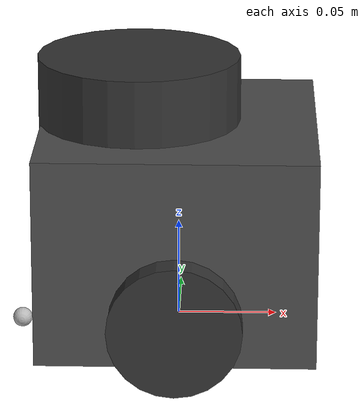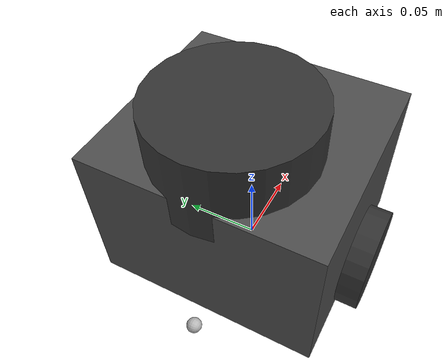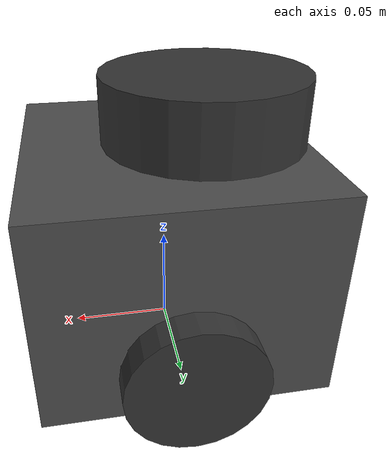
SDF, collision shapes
<?xml version="1.0"?>
<sdf version="1.6">
  <model name="turtlebot3_burger_low_lidar">
    <pose>0 0 0 0 0 0</pose>

    <link name="base_footprint"/>

    <link name="base_link">
      <inertial>
        <pose>0 0 0.042 0 0 0</pose>
        <mass>0.82573504</mass>
        <inertia>
          <ixx>0.002257</ixx>
          <ixy>0</ixy>
          <ixz>0</ixz>
          <iyy>0.002045</iyy>
          <iyz>0</iyz>
          <izz>0.002814</izz>
        </inertia>
      </inertial>
      <collision name="base_collision">
        <pose>0 0 0.052 0 0 0</pose>
        <geometry><box><size>0.138 0.149 0.104</size></box></geometry>
      </collision>
      <visual name="base_visual">
        <pose>0 0 0 0 0 0</pose>
        <geometry>
          <mesh>
            <uri>model://turtlebot3_burger_low_lidar/meshes/burger_base_without_top.stl</uri>
            <scale>0.001 0.001 0.001</scale>
          </mesh>
        </geometry>
        <material>
          <ambient>0.3 0.3 0.3 1</ambient>
          <diffuse>0.3 0.3 0.3 1</diffuse>
        </material>
      </visual>
      <sensor name="base_contact_sensor" type="contact">
        <always_on>true</always_on>
        <update_rate>100</update_rate>
        <contact><collision>base_collision</collision></contact>
        <plugin name="base_contact_ros" filename="libgazebo_ros_bumper.so">
          <ros>
            <namespace>/gazebo/contacts</namespace>
            <remapping>bumper_states:=base</remapping>
          </ros>
          <frame_name>world</frame_name>
        </plugin>
      </sensor>
    </link>

    <link name="imu_link">
      <sensor name="tb3_imu" type="imu">
        <always_on>true</always_on>
        <update_rate>200</update_rate>
        <imu>
          <angular_velocity>
            <x><noise type="gaussian"><mean>0</mean><stddev>2e-4</stddev></noise></x>
            <y><noise type="gaussian"><mean>0</mean><stddev>2e-4</stddev></noise></y>
            <z><noise type="gaussian"><mean>0</mean><stddev>2e-4</stddev></noise></z>
          </angular_velocity>
          <linear_acceleration>
            <x><noise type="gaussian"><mean>0</mean><stddev>1.7e-2</stddev></noise></x>
            <y><noise type="gaussian"><mean>0</mean><stddev>1.7e-2</stddev></noise></y>
            <z><noise type="gaussian"><mean>0</mean><stddev>1.7e-2</stddev></noise></z>
          </linear_acceleration>
        </imu>
        <plugin name="turtlebot3_imu" filename="libgazebo_ros_imu_sensor.so">
          <ros><remapping>~/out:=imu</remapping></ros>
        </plugin>
      </sensor>
    </link>

    <link name="base_scan">
      <inertial>
        <pose>-0.020 0 0.110 0 0 0</pose>
        <mass>0.114</mass>
        <inertia>
          <ixx>0.001</ixx><ixy>0</ixy><ixz>0</ixz>
          <iyy>0.001</iyy><iyz>0</iyz><izz>0.001</izz>
        </inertia>
      </inertial>
      <collision name="lidar_sensor_collision">
        <pose>-0.020 0 0.110 0 0 0</pose>
        <geometry><cylinder><radius>0.0508</radius><length>0.055</length></cylinder></geometry>
      </collision>
      <visual name="lidar_sensor_visual">
        <pose>-0.032 0 0.120 0 0 0</pose>
        <geometry>
          <mesh>
            <uri>model://turtlebot3_common/meshes/sensors/lds.stl</uri>
            <scale>0.001 0.001 0.001</scale>
          </mesh>
        </geometry>
        <material>
          <ambient>0.2 0.2 0.2 1</ambient>
          <diffuse>0.2 0.2 0.2 1</diffuse>
        </material>
      </visual>
      <sensor name="hls_lfcd_lds" type="ray">
        <always_on>true</always_on>
        <visualize>false</visualize>
        <pose>-0.032 0 0.120 0 0 0</pose>
        <update_rate>5</update_rate>
        <ray>
          <scan>
            <horizontal>
              <samples>360</samples><resolution>1</resolution>
              <min_angle>0</min_angle><max_angle>6.28</max_angle>
            </horizontal>
          </scan>
          <range><min>0.12</min><max>3.5</max><resolution>0.015</resolution></range>
          <noise><type>gaussian</type><mean>0</mean><stddev>0.01</stddev></noise>
        </ray>
        <plugin name="turtlebot3_laserscan" filename="libgazebo_ros_ray_sensor.so">
          <ros><remapping>~/out:=scan</remapping></ros>
          <output_type>sensor_msgs/LaserScan</output_type>
          <frame_name>base_scan</frame_name>
        </plugin>
      </sensor>
      <sensor name="lidar_contact_sensor" type="contact">
        <always_on>true</always_on>
        <update_rate>100</update_rate>
        <contact><collision>lidar_sensor_collision</collision></contact>
        <plugin name="lidar_contact_ros" filename="libgazebo_ros_bumper.so">
          <ros>
            <namespace>/gazebo/contacts</namespace>
            <remapping>bumper_states:=lidar</remapping>
          </ros>
          <frame_name>world</frame_name>
        </plugin>
      </sensor>
    </link>

    <link name="wheel_left_link">
      <inertial>
        <pose>0 0.08 0.023 -1.57 0 0</pose>
        <mass>0.02849894</mass>
        <inertia>
          <ixx>0.0018158194</ixx><ixy>-9.3392e-12</ixy><ixz>1.04909e-11</ixz>
          <iyy>0.0032922126</iyy><iyz>5.75694e-11</iyz><izz>0.0018158194</izz>
        </inertia>
      </inertial>
      <collision name="wheel_left_collision">
        <pose>0 0.08 0.023 -1.57 0 0</pose>
        <geometry><cylinder><radius>0.033</radius><length>0.018</length></cylinder></geometry>
        <surface>
          <friction><ode><mu>100000</mu><mu2>100000</mu2><slip1>0</slip1><slip2>0</slip2></ode></friction>
          <contact><ode><kp>1e5</kp><kd>1</kd><max_vel>0.01</max_vel><min_depth>0.001</min_depth></ode></contact>
        </surface>
      </collision>
      <visual name="wheel_left_visual">
        <pose>0 0.08 0.023 0 0 0</pose>
        <geometry>
          <mesh>
            <uri>model://turtlebot3_common/meshes/wheels/left_tire.stl</uri>
            <scale>0.001 0.001 0.001</scale>
          </mesh>
        </geometry>
        <material><ambient>0.2 0.2 0.2 1</ambient><diffuse>0.2 0.2 0.2 1</diffuse></material>
      </visual>
      <sensor name="wheel_left_contact_sensor" type="contact">
        <always_on>true</always_on>
        <update_rate>100</update_rate>
        <contact><collision>wheel_left_collision</collision></contact>
        <plugin name="wheel_left_contact_ros" filename="libgazebo_ros_bumper.so">
          <ros>
            <namespace>/gazebo/contacts</namespace>
            <remapping>bumper_states:=wheel_left</remapping>
          </ros>
          <frame_name>world</frame_name>
        </plugin>
      </sensor>
    </link>

    <link name="wheel_right_link">
      <inertial>
        <pose>0 -0.08 0.023 -1.57 0 0</pose>
        <mass>0.02849894</mass>
        <inertia>
          <ixx>0.0018158194</ixx><ixy>-9.3392e-12</ixy><ixz>1.04909e-11</ixz>
          <iyy>0.0032922126</iyy><iyz>5.75694e-11</iyz><izz>0.0018158194</izz>
        </inertia>
      </inertial>
      <collision name="wheel_right_collision">
        <pose>0 -0.08 0.023 -1.57 0 0</pose>
        <geometry><cylinder><radius>0.033</radius><length>0.018</length></cylinder></geometry>
        <surface>
          <friction><ode><mu>100000</mu><mu2>100000</mu2><slip1>0</slip1><slip2>0</slip2></ode></friction>
          <contact><ode><kp>1e5</kp><kd>1</kd><max_vel>0.01</max_vel><min_depth>0.001</min_depth></ode></contact>
        </surface>
      </collision>
      <visual name="wheel_right_visual">
        <pose>0 -0.08 0.023 0 0 0</pose>
        <geometry>
          <mesh>
            <uri>model://turtlebot3_common/meshes/wheels/right_tire.stl</uri>
            <scale>0.001 0.001 0.001</scale>
          </mesh>
        </geometry>
        <material><ambient>0.2 0.2 0.2 1</ambient><diffuse>0.2 0.2 0.2 1</diffuse></material>
      </visual>
      <sensor name="wheel_right_contact_sensor" type="contact">
        <always_on>true</always_on>
        <update_rate>100</update_rate>
        <contact><collision>wheel_right_collision</collision></contact>
        <plugin name="wheel_right_contact_ros" filename="libgazebo_ros_bumper.so">
          <ros>
            <namespace>/gazebo/contacts</namespace>
            <remapping>bumper_states:=wheel_right</remapping>
          </ros>
          <frame_name>world</frame_name>
        </plugin>
      </sensor>
    </link>

    <link name="caster_back_link">
      <pose>-0.081 0 -0.004 -1.57 0 0</pose>
      <inertial>
        <mass>0.005</mass>
        <inertia>
          <ixx>0.001</ixx><ixy>0</ixy><ixz>0</ixz>
          <iyy>0.001</iyy><iyz>0</iyz><izz>0.001</izz>
        </inertia>
      </inertial>
      <collision name="caster_collision">
        <geometry><sphere><radius>0.005</radius></sphere></geometry>
        <surface><contact><ode><kp>1e5</kp><kd>1</kd><max_vel>0.01</max_vel><min_depth>0.001</min_depth></ode></contact></surface>
      </collision>
      <sensor name="caster_contact_sensor" type="contact">
        <always_on>true</always_on>
        <update_rate>100</update_rate>
        <contact><collision>caster_collision</collision></contact>
        <plugin name="caster_contact_ros" filename="libgazebo_ros_bumper.so">
          <ros>
            <namespace>/gazebo/contacts</namespace>
            <remapping>bumper_states:=caster</remapping>
          </ros>
          <frame_name>world</frame_name>
        </plugin>
      </sensor>
    </link>

    <joint name="base_joint" type="fixed">
      <parent>base_footprint</parent><child>base_link</child>
      <pose>0 0 0.010 0 0 0</pose>
    </joint>
    <joint name="wheel_left_joint" type="revolute">
      <parent>base_link</parent><child>wheel_left_link</child>
      <pose>0 0.08 0.023 -1.57 0 0</pose>
      <axis><xyz>0 0 1</xyz></axis>
    </joint>
    <joint name="wheel_right_joint" type="revolute">
      <parent>base_link</parent><child>wheel_right_link</child>
      <pose>0 -0.08 0.023 -1.57 0 0</pose>
      <axis><xyz>0 0 1</xyz></axis>
    </joint>
    <joint name="caster_back_joint" type="ball">
      <parent>base_link</parent><child>caster_back_link</child>
    </joint>
    <joint name="imu_joint" type="fixed">
      <parent>base_link</parent><child>imu_link</child>
      <pose>-0.032 0 0.068 0 0 0</pose>
    </joint>
    <joint name="lidar_joint" type="fixed">
      <parent>base_link</parent><child>base_scan</child>
      <pose>-0.032 0 0.120 0 0 0</pose>
    </joint>
    <plugin name="turtlebot3_diff_drive" filename="libgazebo_ros_diff_drive.so">
      <ros/>
      <update_rate>30</update_rate>
      <left_joint>wheel_left_joint</left_joint>
      <right_joint>wheel_right_joint</right_joint>
      <wheel_separation>0.160</wheel_separation>
      <wheel_diameter>0.066</wheel_diameter>
      <max_wheel_torque>20</max_wheel_torque>
      <max_wheel_acceleration>1</max_wheel_acceleration>
      <command_topic>cmd_vel</command_topic>
      <publish_odom>true</publish_odom>
      <publish_odom_tf>true</publish_odom_tf>
      <publish_wheel_tf>false</publish_wheel_tf>
      <odometry_topic>odom</odometry_topic>
      <odometry_frame>odom</odometry_frame>
      <robot_base_frame>base_footprint</robot_base_frame>
    </plugin>

    <plugin name="turtlebot3_joint_state" filename="libgazebo_ros_joint_state_publisher.so">
      <ros><remapping>~/out:=joint_states</remapping></ros>
      <update_rate>30</update_rate>
      <joint_name>wheel_left_joint</joint_name>
      <joint_name>wheel_right_joint</joint_name>
    </plugin>
  </model>
</sdf>
